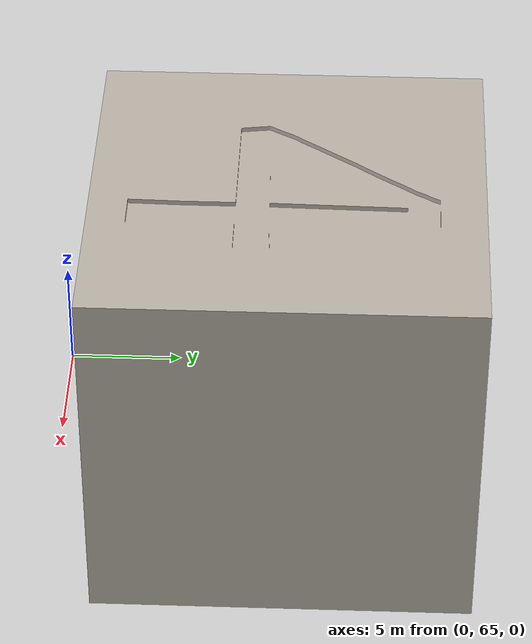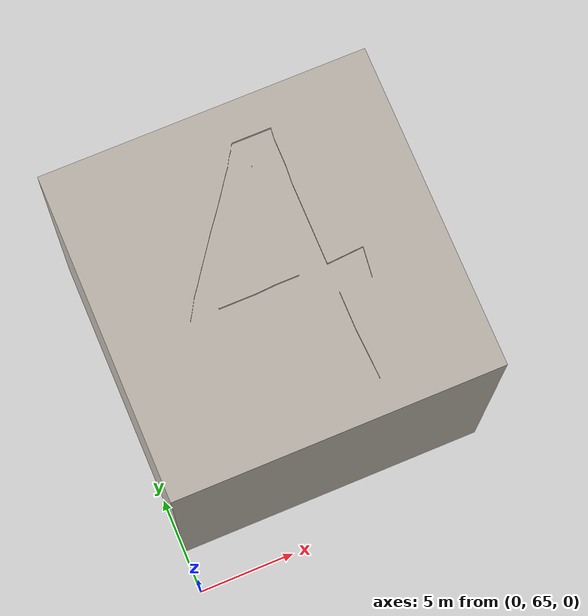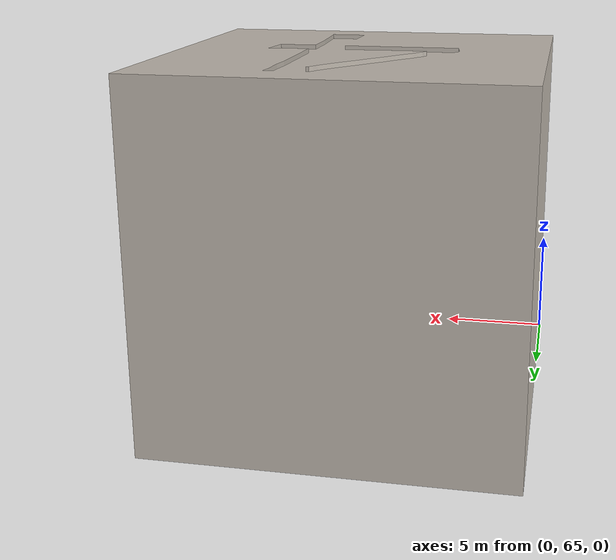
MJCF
<mujoco model="cube4">
  <asset>
    <mesh file="meshes/cube4.stl" name="cube4_mesh" scale="0.8 0.8 0.8"/>
    <texture type="2d" file="../textures/number4.png" rgb1="1 1 1" name="tex-number4"/>
    <material name="cube4" reflectance="0.5" texrepeat="1 1" texture="tex-number4" texuniform="false"/>
  </asset>
  <worldbody>
    <body>
      <body name="object">
        <geom pos="0 0 0" mesh="cube4_mesh" type="mesh" solimp="0.998 0.998 0.001" solref="0.001 1" density="150" friction="0.95 0.3 0.1" material="cube4" group="0" condim="4"/>
      </body>
      <site rgba="0 0 0 0" size="0.005" pos="0 0 -0.10" name="bottom_site"/>
      <site rgba="0 0 0 0" size="0.005" pos="0 0 0.03" name="top_site"/>
      <site rgba="0 0 0 0" size="0.005" pos="0.04 0.03 0" name="horizontal_radius_site"/>
    </body>
  </worldbody>
</mujoco>
